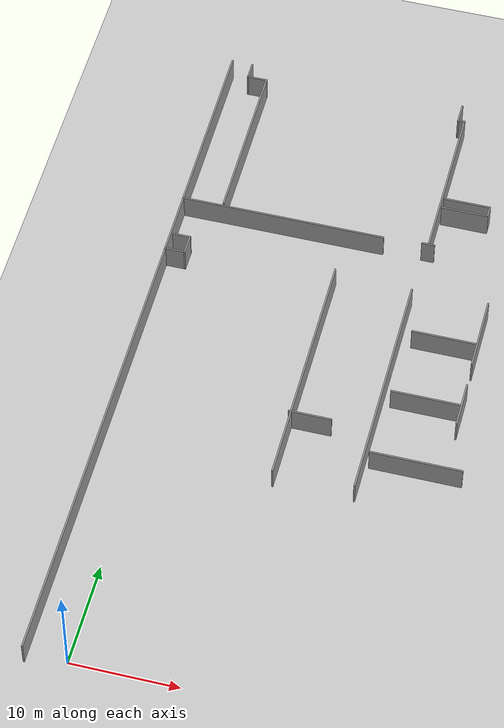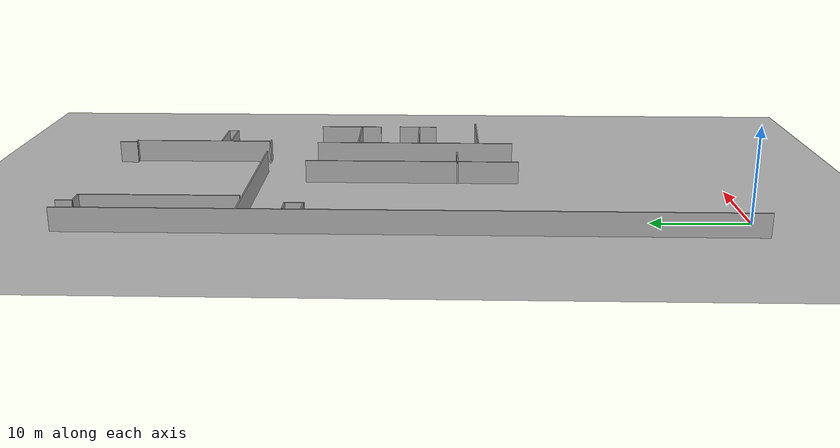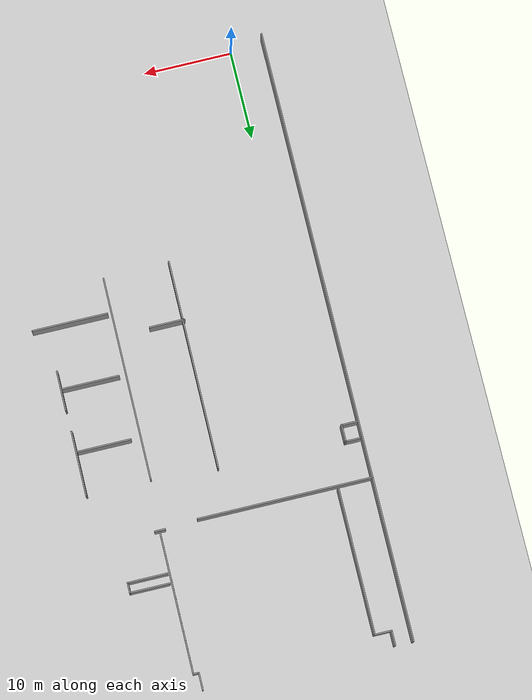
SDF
<sdf version="1.6">
 <world name="default">
  <model name="ground_plane">
   <static>1</static>
   <link name="link">
    <collision name="collision">
     <geometry><plane><normal>0 0 1</normal><size>100 100</size></plane></geometry>
     <surface><friction><ode><mu>100</mu><mu2>50</mu2></ode></friction></surface>
    </collision>
    <visual name="visual">
     <cast_shadows>0</cast_shadows>
     <geometry><plane><normal>0 0 1</normal><size>100 100</size></plane></geometry>
     <material>
      <script><uri>file://media/materials/scripts/gazebo.material</uri><name>Gazebo/Grey</name></script>
     </material>
    </visual>
   </link>
  </model>
  <model name="chengdu_office_0">
   <link name="Wall_17">
    <pose>-34.2267 10.2765 0 0 -0 0</pose>
    <visual name="Wall_17_Visual">
     <pose>0 0 1.25 0 -0 0</pose>
     <geometry><box><size>2 0.15 2.5</size></box></geometry>
     <material>
      <script><uri>file://media/materials/scripts/gazebo.material</uri><name>Gazebo/Grey</name></script>
      <ambient>1 1 1 1</ambient>
      <diffuse>0.7 0.7 0.7 1</diffuse>
      <specular>0.01 0.01 0.01 1</specular>
      <emissive>0 0 0 1</emissive>
     </material>
    </visual>
    <collision name="Wall_17_Collision">
     <pose>0 0 1.25 0 -0 0</pose>
     <geometry><box><size>2 0.15 2.5</size></box></geometry>
     <surface>
      <friction>
       <ode><mu>1</mu><mu2>1</mu2><fdir1>0 0 0</fdir1><slip1>0</slip1><slip2>0</slip2></ode>
       <torsional>
        <coefficient>1</coefficient>
        <patch_radius>0</patch_radius>
        <surface_radius>0</surface_radius>
        <use_patch_radius>1</use_patch_radius>
        <ode><slip>0</slip></ode>
       </torsional>
      </friction>
      <bounce><restitution_coefficient>0</restitution_coefficient><threshold>1e+06</threshold></bounce>
      <contact>
       <collide_without_contact>0</collide_without_contact>
       <collide_without_contact_bitmask>1</collide_without_contact_bitmask>
       <collide_bitmask>1</collide_bitmask>
       <ode>
        <soft_cfm>0</soft_cfm>
        <soft_erp>0.2</soft_erp>
        <kp>1e+13</kp>
        <kd>1</kd>
        <max_vel>0.01</max_vel>
        <min_depth>0</min_depth>
       </ode>
       <bullet>
        <split_impulse>1</split_impulse>
        <split_impulse_penetration_threshold>-0.01</split_impulse_penetration_threshold>
        <soft_cfm>0</soft_cfm>
        <soft_erp>0.2</soft_erp>
        <kp>1e+13</kp>
        <kd>1</kd>
       </bullet>
      </contact>
     </surface>
    </collision>
   </link>
   <link name="Wall_18">
    <pose>-33.3017 11.2015 0 0 -0 1.5708</pose>
    <visual name="Wall_18_Visual">
     <pose>0 0 1.25 0 -0 0</pose>
     <geometry><box><size>2 0.15 2.5</size></box></geometry>
     <material>
      <script><uri>file://media/materials/scripts/gazebo.material</uri><name>Gazebo/Grey</name></script>
      <ambient>1 1 1 1</ambient>
      <diffuse>0.7 0.7 0.7 1</diffuse>
      <specular>0.01 0.01 0.01 1</specular>
      <emissive>0 0 0 1</emissive>
     </material>
    </visual>
    <collision name="Wall_18_Collision">
     <pose>0 0 1.25 0 -0 0</pose>
     <geometry><box><size>2 0.15 2.5</size></box></geometry>
     <surface>
      <friction>
       <ode><mu>1</mu><mu2>1</mu2><fdir1>0 0 0</fdir1><slip1>0</slip1><slip2>0</slip2></ode>
       <torsional>
        <coefficient>1</coefficient>
        <patch_radius>0</patch_radius>
        <surface_radius>0</surface_radius>
        <use_patch_radius>1</use_patch_radius>
        <ode><slip>0</slip></ode>
       </torsional>
      </friction>
      <bounce><restitution_coefficient>0</restitution_coefficient><threshold>1e+06</threshold></bounce>
      <contact>
       <collide_without_contact>0</collide_without_contact>
       <collide_without_contact_bitmask>1</collide_without_contact_bitmask>
       <collide_bitmask>1</collide_bitmask>
       <ode>
        <soft_cfm>0</soft_cfm>
        <soft_erp>0.2</soft_erp>
        <kp>1e+13</kp>
        <kd>1</kd>
        <max_vel>0.01</max_vel>
        <min_depth>0</min_depth>
       </ode>
       <bullet>
        <split_impulse>1</split_impulse>
        <split_impulse_penetration_threshold>-0.01</split_impulse_penetration_threshold>
        <soft_cfm>0</soft_cfm>
        <soft_erp>0.2</soft_erp>
        <kp>1e+13</kp>
        <kd>1</kd>
       </bullet>
      </contact>
     </surface>
    </collision>
   </link>
   <link name="Wall_19">
    <pose>-34.1017 12.1265 0 0 -0 3.14159</pose>
    <visual name="Wall_19_Visual">
     <pose>0 0 1.25 0 -0 0</pose>
     <geometry><box><size>1.75 0.15 2.5</size></box></geometry>
     <material>
      <script><uri>file://media/materials/scripts/gazebo.material</uri><name>Gazebo/Grey</name></script>
      <ambient>1 1 1 1</ambient>
      <diffuse>0.7 0.7 0.7 1</diffuse>
      <specular>0.01 0.01 0.01 1</specular>
      <emissive>0 0 0 1</emissive>
     </material>
    </visual>
    <collision name="Wall_19_Collision">
     <pose>0 0 1.25 0 -0 0</pose>
     <geometry><box><size>1.75 0.15 2.5</size></box></geometry>
     <surface>
      <friction>
       <ode><mu>1</mu><mu2>1</mu2><fdir1>0 0 0</fdir1><slip1>0</slip1><slip2>0</slip2></ode>
       <torsional>
        <coefficient>1</coefficient>
        <patch_radius>0</patch_radius>
        <surface_radius>0</surface_radius>
        <use_patch_radius>1</use_patch_radius>
        <ode><slip>0</slip></ode>
       </torsional>
      </friction>
      <bounce><restitution_coefficient>0</restitution_coefficient><threshold>1e+06</threshold></bounce>
      <contact>
       <collide_without_contact>0</collide_without_contact>
       <collide_without_contact_bitmask>1</collide_without_contact_bitmask>
       <collide_bitmask>1</collide_bitmask>
       <ode>
        <soft_cfm>0</soft_cfm>
        <soft_erp>0.2</soft_erp>
        <kp>1e+13</kp>
        <kd>1</kd>
        <max_vel>0.01</max_vel>
        <min_depth>0</min_depth>
       </ode>
       <bullet>
        <split_impulse>1</split_impulse>
        <split_impulse_penetration_threshold>-0.01</split_impulse_penetration_threshold>
        <soft_cfm>0</soft_cfm>
        <soft_erp>0.2</soft_erp>
        <kp>1e+13</kp>
        <kd>1</kd>
       </bullet>
      </contact>
     </surface>
    </collision>
   </link>
   <link name="Wall_21">
    <pose>-25.4788 16.5812 0 0 -0 3.14159</pose>
    <visual name="Wall_21_Visual">
     <pose>0 0 1.25 0 -0 0</pose>
     <geometry><box><size>19.5 0.15 2.5</size></box></geometry>
     <material>
      <script><uri>file://media/materials/scripts/gazebo.material</uri><name>Gazebo/Grey</name></script>
      <ambient>1 1 1 1</ambient>
      <diffuse>0.7 0.7 0.7 1</diffuse>
      <specular>0.01 0.01 0.01 1</specular>
      <emissive>0 0 0 1</emissive>
     </material>
    </visual>
    <collision name="Wall_21_Collision">
     <pose>0 0 1.25 0 -0 0</pose>
     <geometry><box><size>19.5 0.15 2.5</size></box></geometry>
     <surface>
      <friction>
       <ode><mu>1</mu><mu2>1</mu2><fdir1>0 0 0</fdir1><slip1>0</slip1><slip2>0</slip2></ode>
       <torsional>
        <coefficient>1</coefficient>
        <patch_radius>0</patch_radius>
        <surface_radius>0</surface_radius>
        <use_patch_radius>1</use_patch_radius>
        <ode><slip>0</slip></ode>
       </torsional>
      </friction>
      <bounce><restitution_coefficient>0</restitution_coefficient><threshold>1e+06</threshold></bounce>
      <contact>
       <collide_without_contact>0</collide_without_contact>
       <collide_without_contact_bitmask>1</collide_without_contact_bitmask>
       <collide_bitmask>1</collide_bitmask>
       <ode>
        <soft_cfm>0</soft_cfm>
        <soft_erp>0.2</soft_erp>
        <kp>1e+13</kp>
        <kd>1</kd>
        <max_vel>0.01</max_vel>
        <min_depth>0</min_depth>
       </ode>
       <bullet>
        <split_impulse>1</split_impulse>
        <split_impulse_penetration_threshold>-0.01</split_impulse_penetration_threshold>
        <soft_cfm>0</soft_cfm>
        <soft_erp>0.2</soft_erp>
        <kp>1e+13</kp>
        <kd>1</kd>
       </bullet>
      </contact>
     </surface>
    </collision>
   </link>
   <link name="Wall_23">
    <pose>-31.3168 24.9835 0 0 -0 1.5708</pose>
    <visual name="Wall_23_Visual">
     <pose>0 0 1.25 0 -0 0</pose>
     <geometry><box><size>16.25 0.15 2.5</size></box></geometry>
     <material>
      <script><uri>file://media/materials/scripts/gazebo.material</uri><name>Gazebo/Grey</name></script>
      <ambient>1 1 1 1</ambient>
      <diffuse>0.7 0.7 0.7 1</diffuse>
      <specular>0.01 0.01 0.01 1</specular>
      <emissive>0 0 0 1</emissive>
     </material>
    </visual>
    <collision name="Wall_23_Collision">
     <pose>0 0 1.25 0 -0 0</pose>
     <geometry><box><size>16.25 0.15 2.5</size></box></geometry>
     <surface>
      <friction>
       <ode><mu>1</mu><mu2>1</mu2><fdir1>0 0 0</fdir1><slip1>0</slip1><slip2>0</slip2></ode>
       <torsional>
        <coefficient>1</coefficient>
        <patch_radius>0</patch_radius>
        <surface_radius>0</surface_radius>
        <use_patch_radius>1</use_patch_radius>
        <ode><slip>0</slip></ode>
       </torsional>
      </friction>
      <bounce><restitution_coefficient>0</restitution_coefficient><threshold>1e+06</threshold></bounce>
      <contact>
       <collide_without_contact>0</collide_without_contact>
       <collide_without_contact_bitmask>1</collide_without_contact_bitmask>
       <collide_bitmask>1</collide_bitmask>
       <ode>
        <soft_cfm>0</soft_cfm>
        <soft_erp>0.2</soft_erp>
        <kp>1e+13</kp>
        <kd>1</kd>
        <max_vel>0.01</max_vel>
        <min_depth>0</min_depth>
       </ode>
       <bullet>
        <split_impulse>1</split_impulse>
        <split_impulse_penetration_threshold>-0.01</split_impulse_penetration_threshold>
        <soft_cfm>0</soft_cfm>
        <soft_erp>0.2</soft_erp>
        <kp>1e+13</kp>
        <kd>1</kd>
       </bullet>
      </contact>
     </surface>
    </collision>
   </link>
   <link name="Wall_24">
    <pose>-32.2418 33.0335 0 0 -0 3.14159</pose>
    <visual name="Wall_24_Visual">
     <pose>0 0 1.25 0 -0 0</pose>
     <geometry><box><size>2 0.15 2.5</size></box></geometry>
     <material>
      <script><uri>file://media/materials/scripts/gazebo.material</uri><name>Gazebo/Grey</name></script>
      <ambient>1 1 1 1</ambient>
      <diffuse>0.7 0.7 0.7 1</diffuse>
      <specular>0.01 0.01 0.01 1</specular>
      <emissive>0 0 0 1</emissive>
     </material>
    </visual>
    <collision name="Wall_24_Collision">
     <pose>0 0 1.25 0 -0 0</pose>
     <geometry><box><size>2 0.15 2.5</size></box></geometry>
     <surface>
      <friction>
       <ode><mu>1</mu><mu2>1</mu2><fdir1>0 0 0</fdir1><slip1>0</slip1><slip2>0</slip2></ode>
       <torsional>
        <coefficient>1</coefficient>
        <patch_radius>0</patch_radius>
        <surface_radius>0</surface_radius>
        <use_patch_radius>1</use_patch_radius>
        <ode><slip>0</slip></ode>
       </torsional>
      </friction>
      <bounce><restitution_coefficient>0</restitution_coefficient><threshold>1e+06</threshold></bounce>
      <contact>
       <collide_without_contact>0</collide_without_contact>
       <collide_without_contact_bitmask>1</collide_without_contact_bitmask>
       <collide_bitmask>1</collide_bitmask>
       <ode>
        <soft_cfm>0</soft_cfm>
        <soft_erp>0.2</soft_erp>
        <kp>1e+13</kp>
        <kd>1</kd>
        <max_vel>0.01</max_vel>
        <min_depth>0</min_depth>
       </ode>
       <bullet>
        <split_impulse>1</split_impulse>
        <split_impulse_penetration_threshold>-0.01</split_impulse_penetration_threshold>
        <soft_cfm>0</soft_cfm>
        <soft_erp>0.2</soft_erp>
        <kp>1e+13</kp>
        <kd>1</kd>
       </bullet>
      </contact>
     </surface>
    </collision>
   </link>
   <link name="Wall_25">
    <pose>-33.1668 33.8335 0 0 -0 1.5708</pose>
    <visual name="Wall_25_Visual">
     <pose>0 0 1.25 0 -0 0</pose>
     <geometry><box><size>1.75 0.15 2.5</size></box></geometry>
     <material>
      <script><uri>file://media/materials/scripts/gazebo.material</uri><name>Gazebo/Grey</name></script>
      <ambient>1 1 1 1</ambient>
      <diffuse>0.7 0.7 0.7 1</diffuse>
      <specular>0.01 0.01 0.01 1</specular>
      <emissive>0 0 0 1</emissive>
     </material>
    </visual>
    <collision name="Wall_25_Collision">
     <pose>0 0 1.25 0 -0 0</pose>
     <geometry><box><size>1.75 0.15 2.5</size></box></geometry>
     <surface>
      <friction>
       <ode><mu>1</mu><mu2>1</mu2><fdir1>0 0 0</fdir1><slip1>0</slip1><slip2>0</slip2></ode>
       <torsional>
        <coefficient>1</coefficient>
        <patch_radius>0</patch_radius>
        <surface_radius>0</surface_radius>
        <use_patch_radius>1</use_patch_radius>
        <ode><slip>0</slip></ode>
       </torsional>
      </friction>
      <bounce><restitution_coefficient>0</restitution_coefficient><threshold>1e+06</threshold></bounce>
      <contact>
       <collide_without_contact>0</collide_without_contact>
       <collide_without_contact_bitmask>1</collide_without_contact_bitmask>
       <collide_bitmask>1</collide_bitmask>
       <ode>
        <soft_cfm>0</soft_cfm>
        <soft_erp>0.2</soft_erp>
        <kp>1e+13</kp>
        <kd>1</kd>
        <max_vel>0.01</max_vel>
        <min_depth>0</min_depth>
       </ode>
       <bullet>
        <split_impulse>1</split_impulse>
        <split_impulse_penetration_threshold>-0.01</split_impulse_penetration_threshold>
        <soft_cfm>0</soft_cfm>
        <soft_erp>0.2</soft_erp>
        <kp>1e+13</kp>
        <kd>1</kd>
       </bullet>
      </contact>
     </surface>
    </collision>
   </link>
   <link name="Wall_27">
    <pose>-12.0996 33.5218 0 0 0 -1.5708</pose>
    <visual name="Wall_27_Visual">
     <pose>0 0 1.25 0 -0 0</pose>
     <geometry><box><size>2 0.15 2.5</size></box></geometry>
     <material>
      <script><uri>file://media/materials/scripts/gazebo.material</uri><name>Gazebo/Grey</name></script>
      <ambient>1 1 1 1</ambient>
      <diffuse>0.7 0.7 0.7 1</diffuse>
      <specular>0.01 0.01 0.01 1</specular>
      <emissive>0 0 0 1</emissive>
     </material>
    </visual>
    <collision name="Wall_27_Collision">
     <pose>0 0 1.25 0 -0 0</pose>
     <geometry><box><size>2 0.15 2.5</size></box></geometry>
     <surface>
      <friction>
       <ode><mu>1</mu><mu2>1</mu2><fdir1>0 0 0</fdir1><slip1>0</slip1><slip2>0</slip2></ode>
       <torsional>
        <coefficient>1</coefficient>
        <patch_radius>0</patch_radius>
        <surface_radius>0</surface_radius>
        <use_patch_radius>1</use_patch_radius>
        <ode><slip>0</slip></ode>
       </torsional>
      </friction>
      <bounce><restitution_coefficient>0</restitution_coefficient><threshold>1e+06</threshold></bounce>
      <contact>
       <collide_without_contact>0</collide_without_contact>
       <collide_without_contact_bitmask>1</collide_without_contact_bitmask>
       <collide_bitmask>1</collide_bitmask>
       <ode>
        <soft_cfm>0</soft_cfm>
        <soft_erp>0.2</soft_erp>
        <kp>1e+13</kp>
        <kd>1</kd>
        <max_vel>0.01</max_vel>
        <min_depth>0</min_depth>
       </ode>
       <bullet>
        <split_impulse>1</split_impulse>
        <split_impulse_penetration_threshold>-0.01</split_impulse_penetration_threshold>
        <soft_cfm>0</soft_cfm>
        <soft_erp>0.2</soft_erp>
        <kp>1e+13</kp>
        <kd>1</kd>
       </bullet>
      </contact>
     </surface>
    </collision>
   </link>
   <link name="Wall_28">
    <pose>-11.7996 32.5968 0 0 -0 0</pose>
    <visual name="Wall_28_Visual">
     <pose>0 0 1.25 0 -0 0</pose>
     <geometry><box><size>0.75 0.15 2.5</size></box></geometry>
     <material>
      <script><uri>file://media/materials/scripts/gazebo.material</uri><name>Gazebo/Grey</name></script>
      <ambient>1 1 1 1</ambient>
      <diffuse>0.7 0.7 0.7 1</diffuse>
      <specular>0.01 0.01 0.01 1</specular>
      <emissive>0 0 0 1</emissive>
     </material>
    </visual>
    <collision name="Wall_28_Collision">
     <pose>0 0 1.25 0 -0 0</pose>
     <geometry><box><size>0.75 0.15 2.5</size></box></geometry>
     <surface>
      <friction>
       <ode><mu>1</mu><mu2>1</mu2><fdir1>0 0 0</fdir1><slip1>0</slip1><slip2>0</slip2></ode>
       <torsional>
        <coefficient>1</coefficient>
        <patch_radius>0</patch_radius>
        <surface_radius>0</surface_radius>
        <use_patch_radius>1</use_patch_radius>
        <ode><slip>0</slip></ode>
       </torsional>
      </friction>
      <bounce><restitution_coefficient>0</restitution_coefficient><threshold>1e+06</threshold></bounce>
      <contact>
       <collide_without_contact>0</collide_without_contact>
       <collide_without_contact_bitmask>1</collide_without_contact_bitmask>
       <collide_bitmask>1</collide_bitmask>
       <ode>
        <soft_cfm>0</soft_cfm>
        <soft_erp>0.2</soft_erp>
        <kp>1e+13</kp>
        <kd>1</kd>
        <max_vel>0.01</max_vel>
        <min_depth>0</min_depth>
       </ode>
       <bullet>
        <split_impulse>1</split_impulse>
        <split_impulse_penetration_threshold>-0.01</split_impulse_penetration_threshold>
        <soft_cfm>0</soft_cfm>
        <soft_erp>0.2</soft_erp>
        <kp>1e+13</kp>
        <kd>1</kd>
       </bullet>
      </contact>
     </surface>
    </collision>
   </link>
   <link name="Wall_29">
    <pose>-11.4996 24.7968 0 0 0 -1.5708</pose>
    <visual name="Wall_29_Visual">
     <pose>0 0 1.25 0 -0 0</pose>
     <geometry><box><size>15.75 0.15 2.5</size></box></geometry>
     <material>
      <script><uri>file://media/materials/scripts/gazebo.material</uri><name>Gazebo/Grey</name></script>
      <ambient>1 1 1 1</ambient>
      <diffuse>0.7 0.7 0.7 1</diffuse>
      <specular>0.01 0.01 0.01 1</specular>
      <emissive>0 0 0 1</emissive>
     </material>
    </visual>
    <collision name="Wall_29_Collision">
     <pose>0 0 1.25 0 -0 0</pose>
     <geometry><box><size>15.75 0.15 2.5</size></box></geometry>
     <surface>
      <friction>
       <ode><mu>1</mu><mu2>1</mu2><fdir1>0 0 0</fdir1><slip1>0</slip1><slip2>0</slip2></ode>
       <torsional>
        <coefficient>1</coefficient>
        <patch_radius>0</patch_radius>
        <surface_radius>0</surface_radius>
        <use_patch_radius>1</use_patch_radius>
        <ode><slip>0</slip></ode>
       </torsional>
      </friction>
      <bounce><restitution_coefficient>0</restitution_coefficient><threshold>1e+06</threshold></bounce>
      <contact>
       <collide_without_contact>0</collide_without_contact>
       <collide_without_contact_bitmask>1</collide_without_contact_bitmask>
       <collide_bitmask>1</collide_bitmask>
       <ode>
        <soft_cfm>0</soft_cfm>
        <soft_erp>0.2</soft_erp>
        <kp>1e+13</kp>
        <kd>1</kd>
        <max_vel>0.01</max_vel>
        <min_depth>0</min_depth>
       </ode>
       <bullet>
        <split_impulse>1</split_impulse>
        <split_impulse_penetration_threshold>-0.01</split_impulse_penetration_threshold>
        <soft_cfm>0</soft_cfm>
        <soft_erp>0.2</soft_erp>
        <kp>1e+13</kp>
        <kd>1</kd>
       </bullet>
      </contact>
     </surface>
    </collision>
   </link>
   <link name="Wall_3">
    <pose>-35.175 0.125 0 0 0 -1.5708</pose>
    <visual name="Wall_3_Visual">
     <pose>0 0 1.25 0 -0 0</pose>
     <geometry><box><size>69.25 0.15 2.5</size></box></geometry>
     <material>
      <script><uri>file://media/materials/scripts/gazebo.material</uri><name>Gazebo/Grey</name></script>
      <ambient>1 1 1 1</ambient>
      <diffuse>0.7 0.7 0.7 1</diffuse>
      <specular>0.01 0.01 0.01 1</specular>
      <emissive>0 0 0 1</emissive>
     </material>
    </visual>
    <collision name="Wall_3_Collision">
     <pose>0 0 1.25 0 -0 0</pose>
     <geometry><box><size>69.25 0.15 2.5</size></box></geometry>
     <surface>
      <friction>
       <ode><mu>1</mu><mu2>1</mu2><fdir1>0 0 0</fdir1><slip1>0</slip1><slip2>0</slip2></ode>
       <torsional>
        <coefficient>1</coefficient>
        <patch_radius>0</patch_radius>
        <surface_radius>0</surface_radius>
        <use_patch_radius>1</use_patch_radius>
        <ode><slip>0</slip></ode>
       </torsional>
      </friction>
      <bounce><restitution_coefficient>0</restitution_coefficient><threshold>1e+06</threshold></bounce>
      <contact>
       <collide_without_contact>0</collide_without_contact>
       <collide_without_contact_bitmask>1</collide_without_contact_bitmask>
       <collide_bitmask>1</collide_bitmask>
       <ode>
        <soft_cfm>0</soft_cfm>
        <soft_erp>0.2</soft_erp>
        <kp>1e+13</kp>
        <kd>1</kd>
        <max_vel>0.01</max_vel>
        <min_depth>0</min_depth>
       </ode>
       <bullet>
        <split_impulse>1</split_impulse>
        <split_impulse_penetration_threshold>-0.01</split_impulse_penetration_threshold>
        <soft_cfm>0</soft_cfm>
        <soft_erp>0.2</soft_erp>
        <kp>1e+13</kp>
        <kd>1</kd>
       </bullet>
      </contact>
     </surface>
    </collision>
   </link>
   <link name="Wall_31">
    <pose>-11.5426 16.8334 0 0 -0 0</pose>
    <visual name="Wall_31_Visual">
     <pose>0 0 1.25 0 -0 0</pose>
     <geometry><box><size>1.25 0.15 2.5</size></box></geometry>
     <material>
      <script><uri>file://media/materials/scripts/gazebo.material</uri><name>Gazebo/Grey</name></script>
      <ambient>1 1 1 1</ambient>
      <diffuse>0.7 0.7 0.7 1</diffuse>
      <specular>0.01 0.01 0.01 1</specular>
      <emissive>0 0 0 1</emissive>
     </material>
    </visual>
    <collision name="Wall_31_Collision">
     <pose>0 0 1.25 0 -0 0</pose>
     <geometry><box><size>1.25 0.15 2.5</size></box></geometry>
     <surface>
      <friction>
       <ode><mu>1</mu><mu2>1</mu2><fdir1>0 0 0</fdir1><slip1>0</slip1><slip2>0</slip2></ode>
       <torsional>
        <coefficient>1</coefficient>
        <patch_radius>0</patch_radius>
        <surface_radius>0</surface_radius>
        <use_patch_radius>1</use_patch_radius>
        <ode><slip>0</slip></ode>
       </torsional>
      </friction>
      <bounce><restitution_coefficient>0</restitution_coefficient><threshold>1e+06</threshold></bounce>
      <contact>
       <collide_without_contact>0</collide_without_contact>
       <collide_without_contact_bitmask>1</collide_without_contact_bitmask>
       <collide_bitmask>1</collide_bitmask>
       <ode>
        <soft_cfm>0</soft_cfm>
        <soft_erp>0.2</soft_erp>
        <kp>1e+13</kp>
        <kd>1</kd>
        <max_vel>0.01</max_vel>
        <min_depth>0</min_depth>
       </ode>
       <bullet>
        <split_impulse>1</split_impulse>
        <split_impulse_penetration_threshold>-0.01</split_impulse_penetration_threshold>
        <soft_cfm>0</soft_cfm>
        <soft_erp>0.2</soft_erp>
        <kp>1e+13</kp>
        <kd>1</kd>
       </bullet>
      </contact>
     </surface>
    </collision>
   </link>
   <link name="Wall_36">
    <pose>-9.06274 22.6311 0 0 -0 0</pose>
    <visual name="Wall_36_Visual">
     <pose>0 0 1.25 0 -0 0</pose>
     <geometry><box><size>4.5 0.15 2.5</size></box></geometry>
     <material>
      <script><uri>file://media/materials/scripts/gazebo.material</uri><name>Gazebo/Grey</name></script>
      <ambient>1 1 1 1</ambient>
      <diffuse>0.7 0.7 0.7 1</diffuse>
      <specular>0.01 0.01 0.01 1</specular>
      <emissive>0 0 0 1</emissive>
     </material>
    </visual>
    <collision name="Wall_36_Collision">
     <pose>0 0 1.25 0 -0 0</pose>
     <geometry><box><size>4.5 0.15 2.5</size></box></geometry>
     <surface>
      <friction>
       <ode><mu>1</mu><mu2>1</mu2><fdir1>0 0 0</fdir1><slip1>0</slip1><slip2>0</slip2></ode>
       <torsional>
        <coefficient>1</coefficient>
        <patch_radius>0</patch_radius>
        <surface_radius>0</surface_radius>
        <use_patch_radius>1</use_patch_radius>
        <ode><slip>0</slip></ode>
       </torsional>
      </friction>
      <bounce><restitution_coefficient>0</restitution_coefficient><threshold>1e+06</threshold></bounce>
      <contact>
       <collide_without_contact>0</collide_without_contact>
       <collide_without_contact_bitmask>1</collide_without_contact_bitmask>
       <collide_bitmask>1</collide_bitmask>
       <ode>
        <soft_cfm>0</soft_cfm>
        <soft_erp>0.2</soft_erp>
        <kp>1e+13</kp>
        <kd>1</kd>
        <max_vel>0.01</max_vel>
        <min_depth>0</min_depth>
       </ode>
       <bullet>
        <split_impulse>1</split_impulse>
        <split_impulse_penetration_threshold>-0.01</split_impulse_penetration_threshold>
        <soft_cfm>0</soft_cfm>
        <soft_erp>0.2</soft_erp>
        <kp>1e+13</kp>
        <kd>1</kd>
       </bullet>
      </contact>
     </surface>
    </collision>
   </link>
   <link name="Wall_37">
    <pose>-6.88774 22.0811 0 0 0 -1.5708</pose>
    <visual name="Wall_37_Visual">
     <pose>0 0 1.25 0 -0 0</pose>
     <geometry><box><size>1.25 0.15 2.5</size></box></geometry>
     <material>
      <script><uri>file://media/materials/scripts/gazebo.material</uri><name>Gazebo/Grey</name></script>
      <ambient>1 1 1 1</ambient>
      <diffuse>0.7 0.7 0.7 1</diffuse>
      <specular>0.01 0.01 0.01 1</specular>
      <emissive>0 0 0 1</emissive>
     </material>
    </visual>
    <collision name="Wall_37_Collision">
     <pose>0 0 1.25 0 -0 0</pose>
     <geometry><box><size>1.25 0.15 2.5</size></box></geometry>
     <surface>
      <friction>
       <ode><mu>1</mu><mu2>1</mu2><fdir1>0 0 0</fdir1><slip1>0</slip1><slip2>0</slip2></ode>
       <torsional>
        <coefficient>1</coefficient>
        <patch_radius>0</patch_radius>
        <surface_radius>0</surface_radius>
        <use_patch_radius>1</use_patch_radius>
        <ode><slip>0</slip></ode>
       </torsional>
      </friction>
      <bounce><restitution_coefficient>0</restitution_coefficient><threshold>1e+06</threshold></bounce>
      <contact>
       <collide_without_contact>0</collide_without_contact>
       <collide_without_contact_bitmask>1</collide_without_contact_bitmask>
       <collide_bitmask>1</collide_bitmask>
       <ode>
        <soft_cfm>0</soft_cfm>
        <soft_erp>0.2</soft_erp>
        <kp>1e+13</kp>
        <kd>1</kd>
        <max_vel>0.01</max_vel>
        <min_depth>0</min_depth>
       </ode>
       <bullet>
        <split_impulse>1</split_impulse>
        <split_impulse_penetration_threshold>-0.01</split_impulse_penetration_threshold>
        <soft_cfm>0</soft_cfm>
        <soft_erp>0.2</soft_erp>
        <kp>1e+13</kp>
        <kd>1</kd>
       </bullet>
      </contact>
     </surface>
    </collision>
   </link>
   <link name="Wall_38">
    <pose>-9.06274 21.5311 0 0 -0 3.14159</pose>
    <visual name="Wall_38_Visual">
     <pose>0 0 1.25 0 -0 0</pose>
     <geometry><box><size>4.5 0.15 2.5</size></box></geometry>
     <material>
      <script><uri>file://media/materials/scripts/gazebo.material</uri><name>Gazebo/Grey</name></script>
      <ambient>1 1 1 1</ambient>
      <diffuse>0.7 0.7 0.7 1</diffuse>
      <specular>0.01 0.01 0.01 1</specular>
      <emissive>0 0 0 1</emissive>
     </material>
    </visual>
    <collision name="Wall_38_Collision">
     <pose>0 0 1.25 0 -0 0</pose>
     <geometry><box><size>4.5 0.15 2.5</size></box></geometry>
     <surface>
      <friction>
       <ode><mu>1</mu><mu2>1</mu2><fdir1>0 0 0</fdir1><slip1>0</slip1><slip2>0</slip2></ode>
       <torsional>
        <coefficient>1</coefficient>
        <patch_radius>0</patch_radius>
        <surface_radius>0</surface_radius>
        <use_patch_radius>1</use_patch_radius>
        <ode><slip>0</slip></ode>
       </torsional>
      </friction>
      <bounce><restitution_coefficient>0</restitution_coefficient><threshold>1e+06</threshold></bounce>
      <contact>
       <collide_without_contact>0</collide_without_contact>
       <collide_without_contact_bitmask>1</collide_without_contact_bitmask>
       <collide_bitmask>1</collide_bitmask>
       <ode>
        <soft_cfm>0</soft_cfm>
        <soft_erp>0.2</soft_erp>
        <kp>1e+13</kp>
        <kd>1</kd>
        <max_vel>0.01</max_vel>
        <min_depth>0</min_depth>
       </ode>
       <bullet>
        <split_impulse>1</split_impulse>
        <split_impulse_penetration_threshold>-0.01</split_impulse_penetration_threshold>
        <soft_cfm>0</soft_cfm>
        <soft_erp>0.2</soft_erp>
        <kp>1e+13</kp>
        <kd>1</kd>
       </bullet>
      </contact>
     </surface>
    </collision>
   </link>
   <link name="Wall_57">
    <pose>-19.2153 0.033566 0 0 0 -1.5708</pose>
    <visual name="Wall_57_Visual">
     <pose>0 0 1.25 0 -0 0</pose>
     <geometry><box><size>23.5 0.15 2.5</size></box></geometry>
     <material>
      <script><uri>file://media/materials/scripts/gazebo.material</uri><name>Gazebo/Grey</name></script>
      <ambient>1 1 1 1</ambient>
      <diffuse>0.7 0.7 0.7 1</diffuse>
      <specular>0.01 0.01 0.01 1</specular>
      <emissive>0 0 0 1</emissive>
     </material>
    </visual>
    <collision name="Wall_57_Collision">
     <pose>0 0 1.25 0 -0 0</pose>
     <geometry><box><size>23.5 0.15 2.5</size></box></geometry>
     <surface>
      <friction>
       <ode><mu>1</mu><mu2>1</mu2><fdir1>0 0 0</fdir1><slip1>0</slip1><slip2>0</slip2></ode>
       <torsional>
        <coefficient>1</coefficient>
        <patch_radius>0</patch_radius>
        <surface_radius>0</surface_radius>
        <use_patch_radius>1</use_patch_radius>
        <ode><slip>0</slip></ode>
       </torsional>
      </friction>
      <bounce><restitution_coefficient>0</restitution_coefficient><threshold>1e+06</threshold></bounce>
      <contact>
       <collide_without_contact>0</collide_without_contact>
       <collide_without_contact_bitmask>1</collide_without_contact_bitmask>
       <collide_bitmask>1</collide_bitmask>
       <ode>
        <soft_cfm>0</soft_cfm>
        <soft_erp>0.2</soft_erp>
        <kp>1e+13</kp>
        <kd>1</kd>
        <max_vel>0.01</max_vel>
        <min_depth>0</min_depth>
       </ode>
       <bullet>
        <split_impulse>1</split_impulse>
        <split_impulse_penetration_threshold>-0.01</split_impulse_penetration_threshold>
        <soft_cfm>0</soft_cfm>
        <soft_erp>0.2</soft_erp>
        <kp>1e+13</kp>
        <kd>1</kd>
       </bullet>
      </contact>
     </surface>
    </collision>
   </link>
   <link name="Wall_60">
    <pose>-17.4666 -5.0146 0 0 -0 0</pose>
    <visual name="Wall_60_Visual">
     <pose>0 0 1.25 0 -0 0</pose>
     <geometry><box><size>4 0.15 2.5</size></box></geometry>
     <material>
      <script><uri>file://media/materials/scripts/gazebo.material</uri><name>Gazebo/Grey</name></script>
      <ambient>1 1 1 1</ambient>
      <diffuse>0.7 0.7 0.7 1</diffuse>
      <specular>0.01 0.01 0.01 1</specular>
      <emissive>0 0 0 1</emissive>
     </material>
    </visual>
    <collision name="Wall_60_Collision">
     <pose>0 0 1.25 0 -0 0</pose>
     <geometry><box><size>4 0.15 2.5</size></box></geometry>
     <surface>
      <friction>
       <ode><mu>1</mu><mu2>1</mu2><fdir1>0 0 0</fdir1><slip1>0</slip1><slip2>0</slip2></ode>
       <torsional>
        <coefficient>1</coefficient>
        <patch_radius>0</patch_radius>
        <surface_radius>0</surface_radius>
        <use_patch_radius>1</use_patch_radius>
        <ode><slip>0</slip></ode>
       </torsional>
      </friction>
      <bounce><restitution_coefficient>0</restitution_coefficient><threshold>1e+06</threshold></bounce>
      <contact>
       <collide_without_contact>0</collide_without_contact>
       <collide_without_contact_bitmask>1</collide_without_contact_bitmask>
       <collide_bitmask>1</collide_bitmask>
       <ode>
        <soft_cfm>0</soft_cfm>
        <soft_erp>0.2</soft_erp>
        <kp>1e+13</kp>
        <kd>1</kd>
        <max_vel>0.01</max_vel>
        <min_depth>0</min_depth>
       </ode>
       <bullet>
        <split_impulse>1</split_impulse>
        <split_impulse_penetration_threshold>-0.01</split_impulse_penetration_threshold>
        <soft_cfm>0</soft_cfm>
        <soft_erp>0.2</soft_erp>
        <kp>1e+13</kp>
        <kd>1</kd>
       </bullet>
      </contact>
     </surface>
    </collision>
   </link>
   <link name="Wall_62">
    <pose>-11.8289 -0.143284 0 0 0 -1.5708</pose>
    <visual name="Wall_62_Visual">
     <pose>0 0 1.25 0 -0 0</pose>
     <geometry><box><size>22.75 0.15 2.5</size></box></geometry>
     <material>
      <script><uri>file://media/materials/scripts/gazebo.material</uri><name>Gazebo/Grey</name></script>
      <ambient>1 1 1 1</ambient>
      <diffuse>0.7 0.7 0.7 1</diffuse>
      <specular>0.01 0.01 0.01 1</specular>
      <emissive>0 0 0 1</emissive>
     </material>
    </visual>
    <collision name="Wall_62_Collision">
     <pose>0 0 1.25 0 -0 0</pose>
     <geometry><box><size>22.75 0.15 2.5</size></box></geometry>
     <surface>
      <friction>
       <ode><mu>1</mu><mu2>1</mu2><fdir1>0 0 0</fdir1><slip1>0</slip1><slip2>0</slip2></ode>
       <torsional>
        <coefficient>1</coefficient>
        <patch_radius>0</patch_radius>
        <surface_radius>0</surface_radius>
        <use_patch_radius>1</use_patch_radius>
        <ode><slip>0</slip></ode>
       </torsional>
      </friction>
      <bounce><restitution_coefficient>0</restitution_coefficient><threshold>1e+06</threshold></bounce>
      <contact>
       <collide_without_contact>0</collide_without_contact>
       <collide_without_contact_bitmask>1</collide_without_contact_bitmask>
       <collide_bitmask>1</collide_bitmask>
       <ode>
        <soft_cfm>0</soft_cfm>
        <soft_erp>0.2</soft_erp>
        <kp>1e+13</kp>
        <kd>1</kd>
        <max_vel>0.01</max_vel>
        <min_depth>0</min_depth>
       </ode>
       <bullet>
        <split_impulse>1</split_impulse>
        <split_impulse_penetration_threshold>-0.01</split_impulse_penetration_threshold>
        <soft_cfm>0</soft_cfm>
        <soft_erp>0.2</soft_erp>
        <kp>1e+13</kp>
        <kd>1</kd>
       </bullet>
      </contact>
     </surface>
    </collision>
   </link>
   <link name="Wall_67">
    <pose>-7.17117 -7.58913 0 0 -0 0</pose>
    <visual name="Wall_67_Visual">
     <pose>0 0 1.25 0 -0 0</pose>
     <geometry><box><size>8.5 0.15 2.5</size></box></geometry>
     <material>
      <script><uri>file://media/materials/scripts/gazebo.material</uri><name>Gazebo/Grey</name></script>
      <ambient>1 1 1 1</ambient>
      <diffuse>0.7 0.7 0.7 1</diffuse>
      <specular>0.01 0.01 0.01 1</specular>
      <emissive>0 0 0 1</emissive>
     </material>
    </visual>
    <collision name="Wall_67_Collision">
     <pose>0 0 1.25 0 -0 0</pose>
     <geometry><box><size>8.5 0.15 2.5</size></box></geometry>
     <surface>
      <friction>
       <ode><mu>1</mu><mu2>1</mu2><fdir1>0 0 0</fdir1><slip1>0</slip1><slip2>0</slip2></ode>
       <torsional>
        <coefficient>1</coefficient>
        <patch_radius>0</patch_radius>
        <surface_radius>0</surface_radius>
        <use_patch_radius>1</use_patch_radius>
        <ode><slip>0</slip></ode>
       </torsional>
      </friction>
      <bounce><restitution_coefficient>0</restitution_coefficient><threshold>1e+06</threshold></bounce>
      <contact>
       <collide_without_contact>0</collide_without_contact>
       <collide_without_contact_bitmask>1</collide_without_contact_bitmask>
       <collide_bitmask>1</collide_bitmask>
       <ode>
        <soft_cfm>0</soft_cfm>
        <soft_erp>0.2</soft_erp>
        <kp>1e+13</kp>
        <kd>1</kd>
        <max_vel>0.01</max_vel>
        <min_depth>0</min_depth>
       </ode>
       <bullet>
        <split_impulse>1</split_impulse>
        <split_impulse_penetration_threshold>-0.01</split_impulse_penetration_threshold>
        <soft_cfm>0</soft_cfm>
        <soft_erp>0.2</soft_erp>
        <kp>1e+13</kp>
        <kd>1</kd>
       </bullet>
      </contact>
     </surface>
    </collision>
   </link>
   <link name="Wall_69">
    <pose>-7.84935 -0.589611 0 0 -0 0</pose>
    <visual name="Wall_69_Visual">
     <pose>0 0 1.25 0 -0 0</pose>
     <geometry><box><size>6.5 0.15 2.5</size></box></geometry>
     <material>
      <script><uri>file://media/materials/scripts/gazebo.material</uri><name>Gazebo/Grey</name></script>
      <ambient>1 1 1 1</ambient>
      <diffuse>0.7 0.7 0.7 1</diffuse>
      <specular>0.01 0.01 0.01 1</specular>
      <emissive>0 0 0 1</emissive>
     </material>
    </visual>
    <collision name="Wall_69_Collision">
     <pose>0 0 1.25 0 -0 0</pose>
     <geometry><box><size>6.5 0.15 2.5</size></box></geometry>
     <surface>
      <friction>
       <ode><mu>1</mu><mu2>1</mu2><fdir1>0 0 0</fdir1><slip1>0</slip1><slip2>0</slip2></ode>
       <torsional>
        <coefficient>1</coefficient>
        <patch_radius>0</patch_radius>
        <surface_radius>0</surface_radius>
        <use_patch_radius>1</use_patch_radius>
        <ode><slip>0</slip></ode>
       </torsional>
      </friction>
      <bounce><restitution_coefficient>0</restitution_coefficient><threshold>1e+06</threshold></bounce>
      <contact>
       <collide_without_contact>0</collide_without_contact>
       <collide_without_contact_bitmask>1</collide_without_contact_bitmask>
       <collide_bitmask>1</collide_bitmask>
       <ode>
        <soft_cfm>0</soft_cfm>
        <soft_erp>0.2</soft_erp>
        <kp>1e+13</kp>
        <kd>1</kd>
        <max_vel>0.01</max_vel>
        <min_depth>0</min_depth>
       </ode>
       <bullet>
        <split_impulse>1</split_impulse>
        <split_impulse_penetration_threshold>-0.01</split_impulse_penetration_threshold>
        <soft_cfm>0</soft_cfm>
        <soft_erp>0.2</soft_erp>
        <kp>1e+13</kp>
        <kd>1</kd>
       </bullet>
      </contact>
     </surface>
    </collision>
   </link>
   <link name="Wall_71">
    <pose>-4.58801 -0.431438 0 0 0 -1.5708</pose>
    <visual name="Wall_71_Visual">
     <pose>0 0 1.25 0 -0 0</pose>
     <geometry><box><size>4.5 0.15 2.5</size></box></geometry>
     <material>
      <script><uri>file://media/materials/scripts/gazebo.material</uri><name>Gazebo/Grey</name></script>
      <ambient>1 1 1 1</ambient>
      <diffuse>0.7 0.7 0.7 1</diffuse>
      <specular>0.01 0.01 0.01 1</specular>
      <emissive>0 0 0 1</emissive>
     </material>
    </visual>
    <collision name="Wall_71_Collision">
     <pose>0 0 1.25 0 -0 0</pose>
     <geometry><box><size>4.5 0.15 2.5</size></box></geometry>
     <surface>
      <friction>
       <ode><mu>1</mu><mu2>1</mu2><fdir1>0 0 0</fdir1><slip1>0</slip1><slip2>0</slip2></ode>
       <torsional>
        <coefficient>1</coefficient>
        <patch_radius>0</patch_radius>
        <surface_radius>0</surface_radius>
        <use_patch_radius>1</use_patch_radius>
        <ode><slip>0</slip></ode>
       </torsional>
      </friction>
      <bounce><restitution_coefficient>0</restitution_coefficient><threshold>1e+06</threshold></bounce>
      <contact>
       <collide_without_contact>0</collide_without_contact>
       <collide_without_contact_bitmask>1</collide_without_contact_bitmask>
       <collide_bitmask>1</collide_bitmask>
       <ode>
        <soft_cfm>0</soft_cfm>
        <soft_erp>0.2</soft_erp>
        <kp>1e+13</kp>
        <kd>1</kd>
        <max_vel>0.01</max_vel>
        <min_depth>0</min_depth>
       </ode>
       <bullet>
        <split_impulse>1</split_impulse>
        <split_impulse_penetration_threshold>-0.01</split_impulse_penetration_threshold>
        <soft_cfm>0</soft_cfm>
        <soft_erp>0.2</soft_erp>
        <kp>1e+13</kp>
        <kd>1</kd>
       </bullet>
      </contact>
     </surface>
    </collision>
   </link>
   <link name="Wall_73">
    <pose>-7.77753 6.49037 0 0 -0 0</pose>
    <visual name="Wall_73_Visual">
     <pose>0 0 1.25 0 -0 0</pose>
     <geometry><box><size>6 0.15 2.5</size></box></geometry>
     <material>
      <script><uri>file://media/materials/scripts/gazebo.material</uri><name>Gazebo/Grey</name></script>
      <ambient>1 1 1 1</ambient>
      <diffuse>0.7 0.7 0.7 1</diffuse>
      <specular>0.01 0.01 0.01 1</specular>
      <emissive>0 0 0 1</emissive>
     </material>
    </visual>
    <collision name="Wall_73_Collision">
     <pose>0 0 1.25 0 -0 0</pose>
     <geometry><box><size>6 0.15 2.5</size></box></geometry>
     <surface>
      <friction>
       <ode><mu>1</mu><mu2>1</mu2><fdir1>0 0 0</fdir1><slip1>0</slip1><slip2>0</slip2></ode>
       <torsional>
        <coefficient>1</coefficient>
        <patch_radius>0</patch_radius>
        <surface_radius>0</surface_radius>
        <use_patch_radius>1</use_patch_radius>
        <ode><slip>0</slip></ode>
       </torsional>
      </friction>
      <bounce><restitution_coefficient>0</restitution_coefficient><threshold>1e+06</threshold></bounce>
      <contact>
       <collide_without_contact>0</collide_without_contact>
       <collide_without_contact_bitmask>1</collide_without_contact_bitmask>
       <collide_bitmask>1</collide_bitmask>
       <ode>
        <soft_cfm>0</soft_cfm>
        <soft_erp>0.2</soft_erp>
        <kp>1e+13</kp>
        <kd>1</kd>
        <max_vel>0.01</max_vel>
        <min_depth>0</min_depth>
       </ode>
       <bullet>
        <split_impulse>1</split_impulse>
        <split_impulse_penetration_threshold>-0.01</split_impulse_penetration_threshold>
        <soft_cfm>0</soft_cfm>
        <soft_erp>0.2</soft_erp>
        <kp>1e+13</kp>
        <kd>1</kd>
       </bullet>
      </contact>
     </surface>
    </collision>
   </link>
   <link name="Wall_75">
    <pose>-4.66846 7.76762 0 0 0 -1.5708</pose>
    <visual name="Wall_75_Visual">
     <pose>0 0 1.25 0 -0 0</pose>
     <geometry><box><size>7.25 0.15 2.5</size></box></geometry>
     <material>
      <script><uri>file://media/materials/scripts/gazebo.material</uri><name>Gazebo/Grey</name></script>
      <ambient>1 1 1 1</ambient>
      <diffuse>0.7 0.7 0.7 1</diffuse>
      <specular>0.01 0.01 0.01 1</specular>
      <emissive>0 0 0 1</emissive>
     </material>
    </visual>
    <collision name="Wall_75_Collision">
     <pose>0 0 1.25 0 -0 0</pose>
     <geometry><box><size>7.25 0.15 2.5</size></box></geometry>
     <surface>
      <friction>
       <ode><mu>1</mu><mu2>1</mu2><fdir1>0 0 0</fdir1><slip1>0</slip1><slip2>0</slip2></ode>
       <torsional>
        <coefficient>1</coefficient>
        <patch_radius>0</patch_radius>
        <surface_radius>0</surface_radius>
        <use_patch_radius>1</use_patch_radius>
        <ode><slip>0</slip></ode>
       </torsional>
      </friction>
      <bounce><restitution_coefficient>0</restitution_coefficient><threshold>1e+06</threshold></bounce>
      <contact>
       <collide_without_contact>0</collide_without_contact>
       <collide_without_contact_bitmask>1</collide_without_contact_bitmask>
       <collide_bitmask>1</collide_bitmask>
       <ode>
        <soft_cfm>0</soft_cfm>
        <soft_erp>0.2</soft_erp>
        <kp>1e+13</kp>
        <kd>1</kd>
        <max_vel>0.01</max_vel>
        <min_depth>0</min_depth>
       </ode>
       <bullet>
        <split_impulse>1</split_impulse>
        <split_impulse_penetration_threshold>-0.01</split_impulse_penetration_threshold>
        <soft_cfm>0</soft_cfm>
        <soft_erp>0.2</soft_erp>
        <kp>1e+13</kp>
        <kd>1</kd>
       </bullet>
      </contact>
     </surface>
    </collision>
   </link>
   <static>1</static>
   <pose>31.5228 33.6993 0 0 -0 0</pose>
  </model>
 </world>
</sdf>
